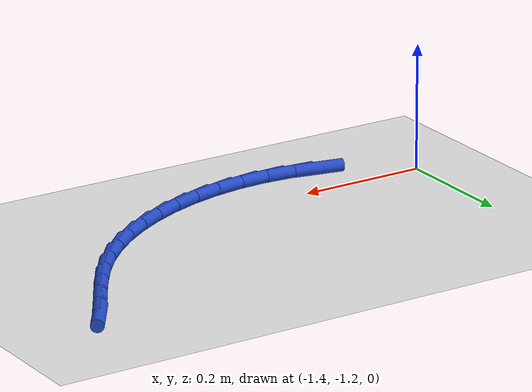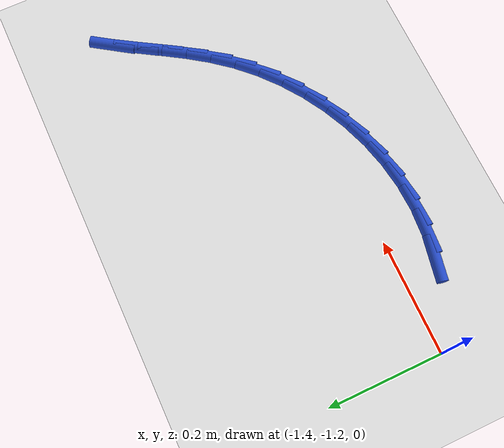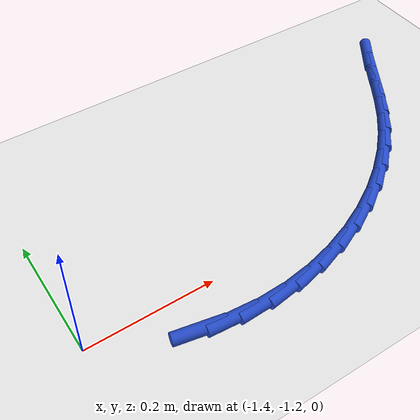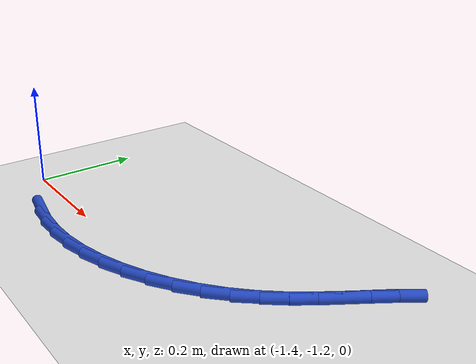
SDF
<sdf version="1.6">
 <world name="default">
  <model name="ground_plane">
   <static>1</static>
   <link name="link">
    <collision name="collision">
     <geometry><plane><normal>0 0 1</normal><size>100 100</size></plane></geometry>
     <surface><friction><ode><mu>100</mu><mu2>50</mu2></ode></friction></surface>
    </collision>
    <visual name="visual">
     <cast_shadows>0</cast_shadows>
     <geometry><plane><normal>0 0 1</normal><size>100 100</size></plane></geometry>
     <material>
      <script><uri>file://media/materials/scripts/gazebo.material</uri><name>Gazebo/WhiteGlow</name></script>
     </material>
    </visual>
   </link>
  </model>
  <model name="line">
   <link name="link_155">
    <pose>-1.2610702135244773 -1.26199124884423 0.01 0 1.57 -0.19543496959403311</pose>
    <collision name="collision">
     <geometry><cylinder><radius>0.01</radius><length>0.08</length></cylinder></geometry>
    </collision>
    <visual name="visual">
     <material>
      <script><name>Gazebo/Blue</name><uri>file://media/materials/scripts/gazebo.material</uri></script>
     </material>
     <geometry><cylinder><radius>0.01</radius><length>0.08</length></cylinder></geometry>
    </visual>
   </link>
   <link name="link_156">
    <pose>-1.2148389559108974 -1.2711432710199169 0.01 0 1.57 -0.07682595498421277</pose>
    <collision name="collision">
     <geometry><cylinder><radius>0.01</radius><length>0.08</length></cylinder></geometry>
    </collision>
    <visual name="visual">
     <material>
      <script><name>Gazebo/Blue</name><uri>file://media/materials/scripts/gazebo.material</uri></script>
     </material>
     <geometry><cylinder><radius>0.01</radius><length>0.08</length></cylinder></geometry>
    </visual>
   </link>
   <link name="link_157">
    <pose>-1.1683187410924598 -1.2747242790309927 0.01 0 1.57 0.03586072300268642</pose>
    <collision name="collision">
     <geometry><cylinder><radius>0.01</radius><length>0.08</length></cylinder></geometry>
    </collision>
    <visual name="visual">
     <material>
      <script><name>Gazebo/Blue</name><uri>file://media/materials/scripts/gazebo.material</uri></script>
     </material>
     <geometry><cylinder><radius>0.01</radius><length>0.08</length></cylinder></geometry>
    </visual>
   </link>
   <link name="link_158">
    <pose>-1.1219032440265122 -1.2730590718724155 0.01 0 1.57 0.1424740524384638</pose>
    <collision name="collision">
     <geometry><cylinder><radius>0.01</radius><length>0.08</length></cylinder></geometry>
    </collision>
    <visual name="visual">
     <material>
      <script><name>Gazebo/Blue</name><uri>file://media/materials/scripts/gazebo.material</uri></script>
     </material>
     <geometry><cylinder><radius>0.01</radius><length>0.08</length></cylinder></geometry>
    </visual>
   </link>
   <link name="link_159">
    <pose>-1.0759861396704018 -1.266472448539143 0.01 0 1.57 0.24345174323034882</pose>
    <collision name="collision">
     <geometry><cylinder><radius>0.01</radius><length>0.08</length></cylinder></geometry>
    </collision>
    <visual name="visual">
     <material>
      <script><name>Gazebo/Blue</name><uri>file://media/materials/scripts/gazebo.material</uri></script>
     </material>
     <geometry><cylinder><radius>0.01</radius><length>0.08</length></cylinder></geometry>
    </visual>
   </link>
   <link name="link_160">
    <pose>-1.0309611029814751 -1.255289208026132 0.01 0 1.57 0.3396516172701078</pose>
    <collision name="collision">
     <geometry><cylinder><radius>0.01</radius><length>0.08</length></cylinder></geometry>
    </collision>
    <visual name="visual">
     <material>
      <script><name>Gazebo/Blue</name><uri>file://media/materials/scripts/gazebo.material</uri></script>
     </material>
     <geometry><cylinder><radius>0.01</radius><length>0.08</length></cylinder></geometry>
    </visual>
   </link>
   <link name="link_161">
    <pose>-0.98722180891708 -1.239834149328341 0.01 0 1.57 0.4322083663777615</pose>
    <collision name="collision">
     <geometry><cylinder><radius>0.01</radius><length>0.08</length></cylinder></geometry>
    </collision>
    <visual name="visual">
     <material>
      <script><name>Gazebo/Blue</name><uri>file://media/materials/scripts/gazebo.material</uri></script>
     </material>
     <geometry><cylinder><radius>0.01</radius><length>0.08</length></cylinder></geometry>
    </visual>
   </link>
   <link name="link_162">
    <pose>-0.9451619324345637 -1.2204320714407273 0.01 0 1.57 0.5224335632076399</pose>
    <collision name="collision">
     <geometry><cylinder><radius>0.01</radius><length>0.08</length></cylinder></geometry>
    </collision>
    <visual name="visual">
     <material>
      <script><name>Gazebo/Blue</name><uri>file://media/materials/scripts/gazebo.material</uri></script>
     </material>
     <geometry><cylinder><radius>0.01</radius><length>0.08</length></cylinder></geometry>
    </visual>
   </link>
   <link name="link_163">
    <pose>-0.9051751484912731 -1.1974077733582489 0.01 0 1.57 0.6117574689444557</pose>
    <collision name="collision">
     <geometry><cylinder><radius>0.01</radius><length>0.08</length></cylinder></geometry>
    </collision>
    <visual name="visual">
     <material>
      <script><name>Gazebo/Blue</name><uri>file://media/materials/scripts/gazebo.material</uri></script>
     </material>
     <geometry><cylinder><radius>0.01</radius><length>0.08</length></cylinder></geometry>
    </visual>
   </link>
   <link name="link_164">
    <pose>-0.8676551320445551 -1.1710860540758623 0.01 0 1.57 0.7017019784023656</pose>
    <collision name="collision">
     <geometry><cylinder><radius>0.01</radius><length>0.08</length></cylinder></geometry>
    </collision>
    <visual name="visual">
     <material>
      <script><name>Gazebo/Blue</name><uri>file://media/materials/scripts/gazebo.material</uri></script>
     </material>
     <geometry><cylinder><radius>0.01</radius><length>0.08</length></cylinder></geometry>
    </visual>
   </link>
   <link name="link_165">
    <pose>-0.8329955580517572 -1.141791712588526 0.01 0 1.57 0.7938703879817032</pose>
    <collision name="collision">
     <geometry><cylinder><radius>0.01</radius><length>0.08</length></cylinder></geometry>
    </collision>
    <visual name="visual">
     <material>
      <script><name>Gazebo/Blue</name><uri>file://media/materials/scripts/gazebo.material</uri></script>
     </material>
     <geometry><cylinder><radius>0.01</radius><length>0.08</length></cylinder></geometry>
    </visual>
   </link>
   <link name="link_166">
    <pose>-0.8015901014702267 -1.1098495478911974 0.01 0 1.57 0.8861331580354527</pose>
    <collision name="collision">
     <geometry><cylinder><radius>0.01</radius><length>0.08</length></cylinder></geometry>
    </collision>
    <visual name="visual">
     <material>
      <script><name>Gazebo/Blue</name><uri>file://media/materials/scripts/gazebo.material</uri></script>
     </material>
     <geometry><cylinder><radius>0.01</radius><length>0.08</length></cylinder></geometry>
    </visual>
   </link>
   <link name="link_167">
    <pose>-0.7736610918294919 -1.0756397238498652 0.01 0 1.57 0.959083823213774</pose>
    <collision name="collision">
     <geometry><cylinder><radius>0.01</radius><length>0.08</length></cylinder></geometry>
    </collision>
    <visual name="visual">
     <material>
      <script><name>Gazebo/Blue</name><uri>file://media/materials/scripts/gazebo.material</uri></script>
     </material>
     <geometry><cylinder><radius>0.01</radius><length>0.08</length></cylinder></geometry>
    </visual>
   </link>
   <link name="link_168">
    <pose>-0.7485414599826833 -1.039829785462539 0.01 0 1.57 1.0051833310167362</pose>
    <collision name="collision">
     <geometry><cylinder><radius>0.01</radius><length>0.08</length></cylinder></geometry>
    </collision>
    <visual name="visual">
     <material>
      <script><name>Gazebo/Blue</name><uri>file://media/materials/scripts/gazebo.material</uri></script>
     </material>
     <geometry><cylinder><radius>0.01</radius><length>0.08</length></cylinder></geometry>
    </visual>
   </link>
   <link name="link_169">
    <pose>-0.725276452710115 -1.0031802337622504 0.01 0 1.57 1.0238340367398466</pose>
    <collision name="collision">
     <geometry><cylinder><radius>0.01</radius><length>0.08</length></cylinder></geometry>
    </collision>
    <visual name="visual">
     <material>
      <script><name>Gazebo/Blue</name><uri>file://media/materials/scripts/gazebo.material</uri></script>
     </material>
     <geometry><cylinder><radius>0.01</radius><length>0.08</length></cylinder></geometry>
    </visual>
   </link>
   <link name="link_170">
    <pose>-0.7029111714056986 -0.966451616759063 0.01 0 1.57 1.014374498445214</pose>
    <collision name="collision">
     <geometry><cylinder><radius>0.01</radius><length>0.08</length></cylinder></geometry>
    </collision>
    <visual name="visual">
     <material>
      <script><name>Gazebo/Blue</name><uri>file://media/materials/scripts/gazebo.material</uri></script>
     </material>
     <geometry><cylinder><radius>0.01</radius><length>0.08</length></cylinder></geometry>
    </visual>
   </link>
   <link name="link_171">
    <pose>-0.6804907174633454 -0.9304044824630386 0.01 0 1.57 0.9756170843337731</pose>
    <collision name="collision">
     <geometry><cylinder><radius>0.01</radius><length>0.08</length></cylinder></geometry>
    </collision>
    <visual name="visual">
     <material>
      <script><name>Gazebo/Blue</name><uri>file://media/materials/scripts/gazebo.material</uri></script>
     </material>
     <geometry><cylinder><radius>0.01</radius><length>0.08</length></cylinder></geometry>
    </visual>
   </link>
  </model>
 </world>
</sdf>
